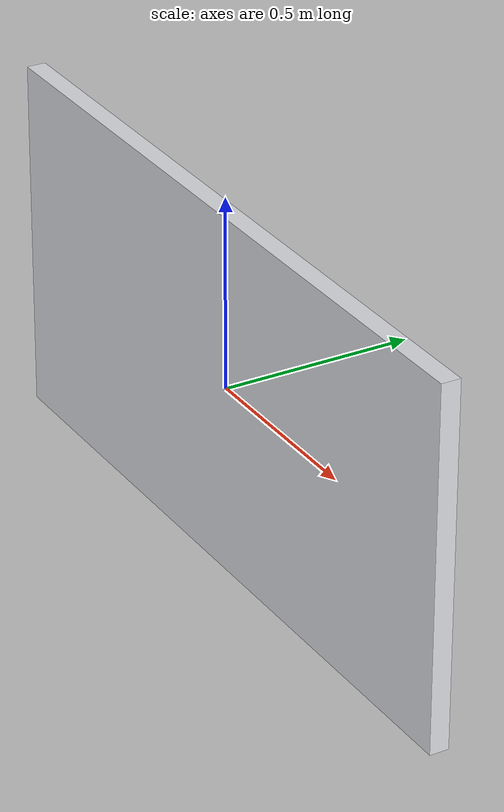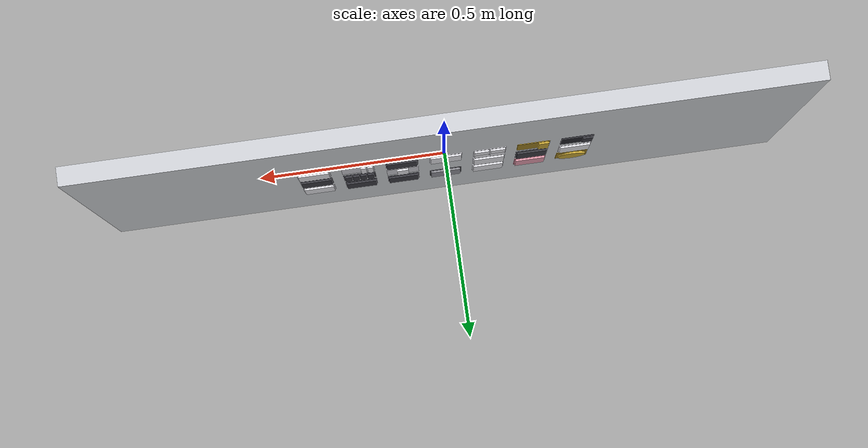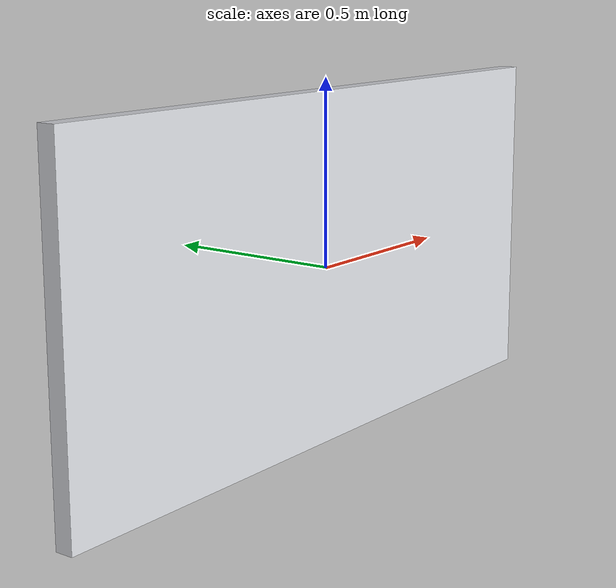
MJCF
<?xml version='1.0' encoding='utf-8'?>
<mujoco model="w1_b1_panel_base">
  <asset>
    <material name="Switch_Quantity2_07_bezel" rgba="0.85 0.85 0.88 1" specular="0.85" shininess="0.9" />
    <material name="Switch_Quantity2_07_button" rgba="0.95 0.95 0.97 1" specular="0.85" shininess="0.9" />
    <material name="Switch_Quantity2_08_bezel" rgba="0.85 0.85 0.88 1" specular="0.85" shininess="0.9" />
    <material name="Switch_Quantity2_08_btn1" rgba="0.95 0.95 0.97 1" specular="0.85" shininess="0.9" />
    <material name="Switch_Quantity2_08_btn2" rgba="0.95 0.95 0.97 1" specular="0.85" shininess="0.9" />
    <material name="Switch_Quantity2_09_bezel" rgba="0.15 0.15 0.18 1" specular="0.75" shininess="0.85" />
    <material name="Switch_Quantity2_09_button" rgba="0.25 0.25 0.28 1" specular="0.75" shininess="0.85" />
    <material name="Switch_Quantity2_10_bezel" rgba="0.85 0.85 0.88 1" specular="0.85" shininess="0.9" />
    <material name="Switch_Quantity2_10_button" rgba="0.95 0.95 0.97 1" specular="0.85" shininess="0.9" />
    <material name="Switch_Quantity4_02_bezel" rgba="0.85 0.85 0.88 1" specular="0.85" shininess="0.9" />
    <material name="Switch_Quantity4_02_btn1" rgba="0.95 0.95 0.97 1" specular="0.85" shininess="0.9" />
    <material name="Switch_Quantity4_02_btn2" rgba="0.95 0.95 0.97 1" specular="0.85" shininess="0.9" />
    <material name="Switch_Quantity4_02_btn3" rgba="0.95 0.95 0.97 1" specular="0.85" shininess="0.9" />
    <material name="Switch_Quantity4_02_btn4" rgba="0.95 0.95 0.97 1" specular="0.85" shininess="0.9" />
    <material name="Switch_Quantity1_45_bezel" rgba="0.65 0.53 0.15 1" specular="0.9" shininess="0.95" />
    <material name="Switch_Quantity1_45_button" rgba="0.83 0.69 0.22 1" specular="0.9" shininess="0.95" />
    <material name="Switch_Quantity1_46_bezel" rgba="0.15 0.15 0.18 1" specular="0.75" shininess="0.85" />
    <material name="Switch_Quantity1_46_button" rgba="0.25 0.25 0.28 1" specular="0.75" shininess="0.85" />
    <material name="Toogle_Quantity1_05_bezel" rgba="0.15 0.15 0.18 1" specular="0.75" shininess="0.85" />
    <material name="Toogle_Quantity1_05_button" rgba="0.25 0.25 0.28 1" specular="0.75" shininess="0.85" />
    <material name="Switch_Quantity4_03_bezel" rgba="0.15 0.15 0.18 1" specular="0.75" shininess="0.85" />
    <material name="Switch_Quantity4_03_btn1" rgba="0.25 0.25 0.28 1" specular="0.75" shininess="0.85" />
    <material name="Switch_Quantity4_03_btn2" rgba="0.25 0.25 0.28 1" specular="0.75" shininess="0.85" />
    <material name="Switch_Quantity4_03_btn3" rgba="0.25 0.25 0.28 1" specular="0.75" shininess="0.85" />
    <material name="Switch_Quantity4_03_btn4" rgba="0.25 0.25 0.28 1" specular="0.75" shininess="0.85" />
    <material name="Switch_Quantity1_47_bezel" rgba="0.85 0.85 0.88 1" specular="0.85" shininess="0.9" />
    <material name="Switch_Quantity1_47_button" rgba="0.95 0.95 0.97 1" specular="0.85" shininess="0.9" />
    <material name="Switch_Quantity2_11_bezel" rgba="0.85 0.85 0.88 1" specular="0.85" shininess="0.9" />
    <material name="Switch_Quantity2_11_button" rgba="0.95 0.95 0.97 1" specular="0.85" shininess="0.9" />
    <material name="Switch_Quantity1_48_bezel" rgba="0.15 0.15 0.18 1" specular="0.75" shininess="0.85" />
    <material name="Switch_Quantity1_48_button" rgba="0.25 0.25 0.28 1" specular="0.75" shininess="0.85" />
    <material name="Switch_Quantity1_49_bezel" rgba="0.85 0.85 0.88 1" specular="0.85" shininess="0.9" />
    <material name="Switch_Quantity1_49_button" rgba="0.95 0.95 0.97 1" specular="0.85" shininess="0.9" />
    <material name="Switch_Quantity3_06_bezel" rgba="0.85 0.85 0.88 1" specular="0.85" shininess="0.9" />
    <material name="Switch_Quantity3_06_button" rgba="0.95 0.95 0.97 1" specular="0.85" shininess="0.9" />
    <material name="Toogle_Quantity2_01_bezel" rgba="0.15 0.15 0.18 1" specular="0.75" shininess="0.85" />
    <material name="Toogle_Quantity2_01_button" rgba="0.25 0.25 0.28 1" specular="0.75" shininess="0.85" />
    <material name="Toogle_Quantity1_06_bezel" rgba="0.15 0.15 0.18 1" specular="0.75" shininess="0.85" />
    <material name="Toogle_Quantity1_06_button" rgba="0.25 0.25 0.28 1" specular="0.75" shininess="0.85" />
    <material name="Placeholder_31_bezel" rgba="0.30 0.30 0.33 1" specular="0.5" shininess="0.5" />
    <material name="Placeholder_31_button" rgba="0.60 0.60 0.63 1" specular="0.5" shininess="0.5" />
    <material name="Switch_Quantity2_12_bezel" rgba="0.85 0.85 0.88 1" specular="0.85" shininess="0.9" />
    <material name="Switch_Quantity2_12_button" rgba="0.95 0.95 0.97 1" specular="0.85" shininess="0.9" />
    <material name="Switch_Quantity2_13_bezel" rgba="0.80 0.50 0.58 1" specular="0.8" shininess="0.9" />
    <material name="Switch_Quantity2_13_button" rgba="0.95 0.65 0.72 1" specular="0.8" shininess="0.9" />
    <material name="Switch_Quantity4_04_bezel" rgba="0.65 0.53 0.15 1" specular="0.9" shininess="0.95" />
    <material name="Switch_Quantity4_04_button" rgba="0.83 0.69 0.22 1" specular="0.9" shininess="0.95" />
  </asset>
  <worldbody>
    <body name="panel_mount" pos="0 0 0">
      <geom name="panel_backplate" type="box" pos="0 0 0" size="0.958 0.025 0.47" rgba="0.86 0.87 0.89 1" contype="1" conaffinity="1" />
      <site name="panel_origin" pos="0 0.025 0" size="0.006" rgba="1 0 0 1" />
      <body name="panel_slot_r1_c1" pos="0.3498 0.03 0.12" quat="0.7071068 -0.7071068 0 0">
        <body name="Switch_Quantity2_07_r1_c1">
          <geom name="Switch_Quantity2_07_bezel__panel_slot_r1_c1" type="box" pos="0 0 0.001" size="0.043 0.043 0.001" material="Switch_Quantity2_07_bezel" />
          <geom name="Switch_Quantity2_07_button__panel_slot_r1_c1" type="box" pos="0 0 0.0035" size="0.04 0.04 0.0035" material="Switch_Quantity2_07_button" />
        </body>
      </body>
      <body name="panel_slot_r1_c2" pos="0.2332 0.03 0.12" quat="0.7071068 -0.7071068 0 0">
        <body name="Switch_Quantity2_08_r1_c2">
          <geom name="Switch_Quantity2_08_bezel__panel_slot_r1_c2" type="box" pos="0 0 0.001" size="0.043 0.043 0.001" material="Switch_Quantity2_08_bezel" />
          <geom name="Switch_Quantity2_08_btn1__panel_slot_r1_c2" type="box" pos="-0.033 0 0.0035" size="0.007 0.04 0.0035" material="Switch_Quantity2_08_btn1" />
          <geom name="Switch_Quantity2_08_btn2__panel_slot_r1_c2" type="box" pos="-0.015 0 0.0035" size="0.007 0.04 0.0035" material="Switch_Quantity2_08_btn2" />
        </body>
      </body>
      <body name="panel_slot_r1_c3" pos="0.1166 0.03 0.12" quat="0.7071068 -0.7071068 0 0">
        <body name="Switch_Quantity2_09_r1_c3">
          <geom name="Switch_Quantity2_09_bezel__panel_slot_r1_c3" type="box" pos="0 0 0.001" size="0.043 0.043 0.001" material="Switch_Quantity2_09_bezel" />
          <geom name="Switch_Quantity2_09_button__panel_slot_r1_c3" type="box" pos="0 0 0.0035" size="0.04 0.04 0.0035" material="Switch_Quantity2_09_button" />
        </body>
      </body>
      <body name="panel_slot_r1_c4" pos="0.0 0.03 0.12" quat="0.7071068 -0.7071068 0 0">
        <body name="Switch_Quantity2_10_r1_c4">
          <geom name="Switch_Quantity2_10_bezel__panel_slot_r1_c4" type="box" pos="0 0 0.001" size="0.043 0.043 0.001" material="Switch_Quantity2_10_bezel" />
          <geom name="Switch_Quantity2_10_button__panel_slot_r1_c4" type="box" pos="0 0 0.0035" size="0.04 0.04 0.0035" material="Switch_Quantity2_10_button" />
        </body>
      </body>
      <body name="panel_slot_r1_c5" pos="-0.1166 0.03 0.12" quat="0.7071068 -0.7071068 0 0">
        <body name="Switch_Quantity4_02_r1_c5">
          <geom name="Switch_Quantity4_02_bezel__panel_slot_r1_c5" type="box" pos="0 0 0.001" size="0.043 0.043 0.001" material="Switch_Quantity4_02_bezel" />
          <geom name="Switch_Quantity4_02_btn1__panel_slot_r1_c5" type="box" pos="-0.021 0.021 0.0035" size="0.019 0.019 0.0035" material="Switch_Quantity4_02_btn1" />
          <geom name="Switch_Quantity4_02_btn2__panel_slot_r1_c5" type="box" pos="0.021 0.021 0.0035" size="0.019 0.019 0.0035" material="Switch_Quantity4_02_btn2" />
          <geom name="Switch_Quantity4_02_btn3__panel_slot_r1_c5" type="box" pos="-0.021 -0.021 0.0035" size="0.019 0.019 0.0035" material="Switch_Quantity4_02_btn3" />
          <geom name="Switch_Quantity4_02_btn4__panel_slot_r1_c5" type="box" pos="0.021 -0.021 0.0035" size="0.019 0.019 0.0035" material="Switch_Quantity4_02_btn4" />
        </body>
      </body>
      <body name="panel_slot_r1_c6" pos="-0.2332 0.03 0.12" quat="0.7071068 -0.7071068 0 0">
        <body name="Switch_Quantity1_45_r1_c6">
          <geom name="Switch_Quantity1_45_bezel__panel_slot_r1_c6" type="box" pos="0 0 0.001" size="0.043 0.043 0.001" material="Switch_Quantity1_45_bezel" />
          <geom name="Switch_Quantity1_45_button__panel_slot_r1_c6" type="box" pos="-0.02667 0 0.0035" size="0.01333 0.04 0.0035" material="Switch_Quantity1_45_button" />
        </body>
      </body>
      <body name="panel_slot_r1_c7" pos="-0.3498 0.03 0.12" quat="0.7071068 -0.7071068 0 0">
        <body name="Switch_Quantity1_46_r1_c7">
          <geom name="Switch_Quantity1_46_bezel__panel_slot_r1_c7" type="box" pos="0 0 0.001" size="0.043 0.043 0.001" material="Switch_Quantity1_46_bezel" />
          <geom name="Switch_Quantity1_46_button__panel_slot_r1_c7" type="box" pos="-0.02667 0 0.0035" size="0.01333 0.03 0.0035" material="Switch_Quantity1_46_button" />
        </body>
      </body>
      <body name="panel_slot_r2_c1" pos="0.3498 0.03 0.0" quat="0.7071068 -0.7071068 0 0">
        <body name="Toogle_Quantity1_05_r2_c1">
          <geom name="Toogle_Quantity1_05_bezel__panel_slot_r2_c1" type="box" pos="0 0 0.001" size="0.043 0.043 0.001" material="Toogle_Quantity1_05_bezel" />
          <geom name="Toogle_Quantity1_05_button__panel_slot_r2_c1" type="box" pos="0 0 0.0035" size="0.04 0.04 0.0035" material="Toogle_Quantity1_05_button" />
        </body>
      </body>
      <body name="panel_slot_r2_c2" pos="0.2332 0.03 0.0" quat="0.7071068 -0.7071068 0 0">
        <body name="Switch_Quantity4_03_r2_c2">
          <geom name="Switch_Quantity4_03_bezel__panel_slot_r2_c2" type="box" pos="0 0 0.001" size="0.043 0.043 0.001" material="Switch_Quantity4_03_bezel" />
          <geom name="Switch_Quantity4_03_btn1__panel_slot_r2_c2" type="box" pos="-0.030 0 0.0035" size="0.008 0.037 0.0035" material="Switch_Quantity4_03_btn1" />
          <geom name="Switch_Quantity4_03_btn2__panel_slot_r2_c2" type="box" pos="-0.010 0 0.0035" size="0.008 0.037 0.0035" material="Switch_Quantity4_03_btn2" />
          <geom name="Switch_Quantity4_03_btn3__panel_slot_r2_c2" type="box" pos="0.010 0 0.0035" size="0.008 0.037 0.0035" material="Switch_Quantity4_03_btn3" />
          <geom name="Switch_Quantity4_03_btn4__panel_slot_r2_c2" type="box" pos="0.030 0 0.0035" size="0.008 0.037 0.0035" material="Switch_Quantity4_03_btn4" />
        </body>
      </body>
      <body name="panel_slot_r2_c3" pos="0.1166 0.03 0.0" quat="0.7071068 -0.7071068 0 0">
        <body name="Switch_Quantity1_47_r2_c3">
          <geom name="Switch_Quantity1_47_bezel__panel_slot_r2_c3" type="box" pos="0 0 0.001" size="0.043 0.043 0.001" material="Switch_Quantity1_47_bezel" />
          <geom name="Switch_Quantity1_47_button__panel_slot_r2_c3" type="box" pos="0 0 0.0035" size="0.015 0.035 0.0035" material="Switch_Quantity1_47_button" />
        </body>
      </body>
      <body name="panel_slot_r2_c5" pos="-0.1166 0.03 0.0" quat="0.7071068 -0.7071068 0 0">
        <body name="Switch_Quantity2_11_r2_c5">
          <geom name="Switch_Quantity2_11_bezel__panel_slot_r2_c5" type="box" pos="0 0 0.001" size="0.043 0.043 0.001" material="Switch_Quantity2_11_bezel" />
          <geom name="Switch_Quantity2_11_button__panel_slot_r2_c5" type="box" pos="0 0 0.0035" size="0.04 0.04 0.0035" material="Switch_Quantity2_11_button" />
        </body>
      </body>
      <body name="panel_slot_r2_c6" pos="-0.2332 0.03 0.0" quat="0.7071068 -0.7071068 0 0">
        <body name="Switch_Quantity1_48_r2_c6">
          <geom name="Switch_Quantity1_48_bezel__panel_slot_r2_c6" type="box" pos="0 0 0.001" size="0.043 0.043 0.001" material="Switch_Quantity1_48_bezel" />
          <geom name="Switch_Quantity1_48_button__panel_slot_r2_c6" type="box" pos="0 0 0.0035" size="0.04 0.04 0.0035" material="Switch_Quantity1_48_button" />
        </body>
      </body>
      <body name="panel_slot_r2_c7" pos="-0.3498 0.03 0.0" quat="0.7071068 -0.7071068 0 0">
        <body name="Switch_Quantity1_49_r2_c7">
          <geom name="Switch_Quantity1_49_bezel__panel_slot_r2_c7" type="box" pos="0 0 0.001" size="0.043 0.043 0.001" material="Switch_Quantity1_49_bezel" />
          <geom name="Switch_Quantity1_49_button__panel_slot_r2_c7" type="box" pos="0 0 0.0035" size="0.04 0.04 0.0035" material="Switch_Quantity1_49_button" />
        </body>
      </body>
      <body name="panel_slot_r3_c1" pos="0.3498 0.03 -0.12" quat="0.7071068 -0.7071068 0 0">
        <body name="Switch_Quantity3_06_r3_c1">
          <geom name="Switch_Quantity3_06_bezel__panel_slot_r3_c1" type="box" pos="0 0 0.001" size="0.043 0.043 0.001" material="Switch_Quantity3_06_bezel" />
          <geom name="Switch_Quantity3_06_button__panel_slot_r3_c1" type="box" pos="0 0 0.0035" size="0.04 0.04 0.0035" material="Switch_Quantity3_06_button" />
        </body>
      </body>
      <body name="panel_slot_r3_c2" pos="0.2332 0.03 -0.12" quat="0.7071068 -0.7071068 0 0">
        <body name="Toogle_Quantity2_01_r3_c2">
          <geom name="Toogle_Quantity2_01_bezel__panel_slot_r3_c2" type="box" pos="0 0 0.001" size="0.043 0.043 0.001" material="Toogle_Quantity2_01_bezel" />
          <geom name="Toogle_Quantity2_01_button__panel_slot_r3_c2" type="box" pos="0 0 0.0035" size="0.04 0.04 0.0035" material="Toogle_Quantity2_01_button" />
        </body>
      </body>
      <body name="panel_slot_r3_c3" pos="0.1166 0.03 -0.12" quat="0.7071068 -0.7071068 0 0">
        <body name="Toogle_Quantity1_06_r3_c3">
          <geom name="Toogle_Quantity1_06_bezel__panel_slot_r3_c3" type="box" pos="0 0 0.001" size="0.043 0.043 0.001" material="Toogle_Quantity1_06_bezel" />
          <geom name="Toogle_Quantity1_06_button__panel_slot_r3_c3" type="box" pos="0 0 0.0035" size="0.04 0.04 0.0035" material="Toogle_Quantity1_06_button" />
        </body>
      </body>
      <body name="panel_slot_r3_c4" pos="0.0 0.03 -0.12" quat="0.7071068 -0.7071068 0 0">
        <body name="Placeholder_31_r3_c4">
          <geom name="Placeholder_31_bezel__panel_slot_r3_c4" type="box" pos="0 0 0.001" size="0.043 0.043 0.001" material="Placeholder_31_bezel" />
          <geom name="Placeholder_31_button__panel_slot_r3_c4" type="box" pos="0 0 0.0035" size="0.04 0.04 0.0035" material="Placeholder_31_button" />
        </body>
      </body>
      <body name="panel_slot_r3_c5" pos="-0.1166 0.03 -0.12" quat="0.7071068 -0.7071068 0 0">
        <body name="Switch_Quantity2_12_r3_c5">
          <geom name="Switch_Quantity2_12_bezel__panel_slot_r3_c5" type="box" pos="0 0 0.001" size="0.043 0.043 0.001" material="Switch_Quantity2_12_bezel" />
          <geom name="Switch_Quantity2_12_button__panel_slot_r3_c5" type="box" pos="0 0 0.0035" size="0.04 0.04 0.0035" material="Switch_Quantity2_12_button" />
        </body>
      </body>
      <body name="panel_slot_r3_c6" pos="-0.2332 0.03 -0.12" quat="0.7071068 -0.7071068 0 0">
        <body name="Switch_Quantity2_13_r3_c6">
          <geom name="Switch_Quantity2_13_bezel__panel_slot_r3_c6" type="box" pos="0 0 0.001" size="0.043 0.043 0.001" material="Switch_Quantity2_13_bezel" />
          <geom name="Switch_Quantity2_13_button__panel_slot_r3_c6" type="box" pos="0 0 0.0035" size="0.04 0.04 0.0035" material="Switch_Quantity2_13_button" />
        </body>
      </body>
      <body name="panel_slot_r3_c7" pos="-0.3498 0.03 -0.12" quat="0.7071068 -0.7071068 0 0">
        <body name="Switch_Quantity4_04_r3_c7">
          <geom name="Switch_Quantity4_04_bezel__panel_slot_r3_c7" type="box" pos="0 0 0.001" size="0.043 0.043 0.001" material="Switch_Quantity4_04_bezel" />
          <geom name="Switch_Quantity4_04_button__panel_slot_r3_c7" type="cylinder" pos="0 0 0.0035" size="0.038 0.0035" material="Switch_Quantity4_04_button" />
        </body>
      </body>
    </body>
  </worldbody>
</mujoco>
